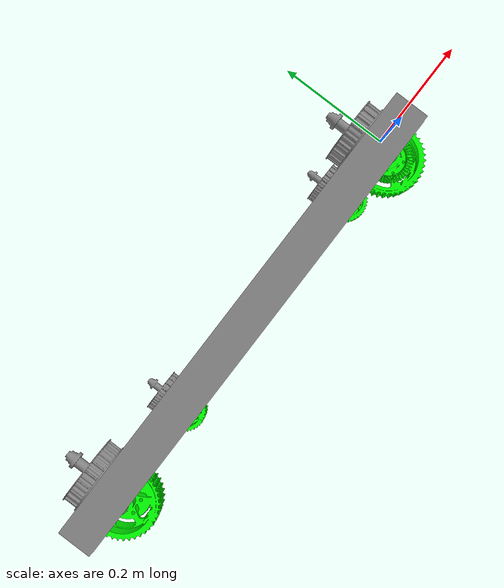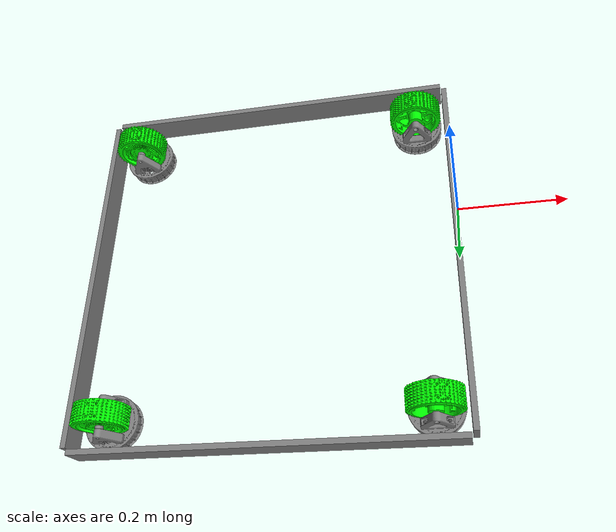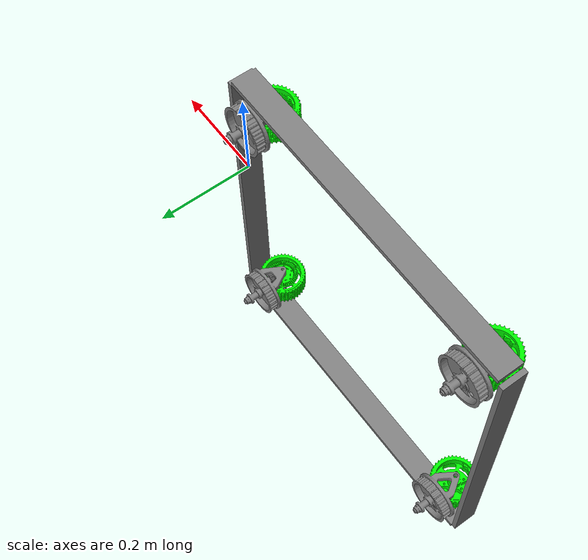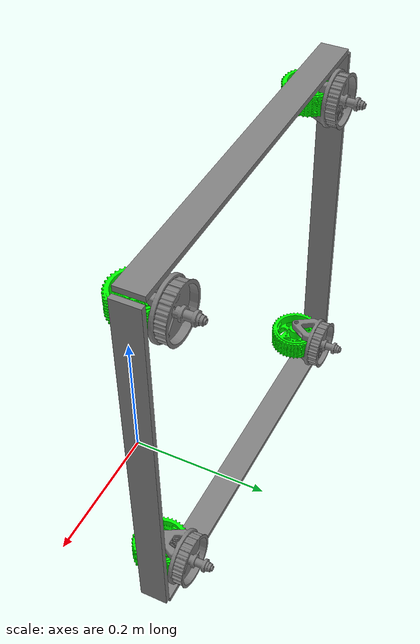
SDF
<?xml version="1.0" encoding="utf-8"?>
<sdf version="1.5">
  <model name="SimSwerveBotSqr">
    <pose>0 0 -0.0732265880524317 0 0 0</pose>

    <link name="Body">
      <gravity>1</gravity>
      <self_collide>0</self_collide>
      <pose>-0.361578521209738 0.0224477103221839 -0.000104141162104054 0 0 0</pose>
      <must_be_base_link>1</must_be_base_link>
      <velocity_decay>
        <linear>0</linear>
        <angular>0</angular>
      </velocity_decay>
      <inertial>
        <mass>250</mass>
        <pose>0 0 0 0 0 0</pose>
        <inertia>
          <ixx>20</ixx>
          <ixy>0</ixy>
          <ixz>0</ixz>
          <iyy>20</iyy>
          <iyz>0</iyz>
          <izz>20</izz>
        </inertia>
      </inertial>
      <collision name="Body_collision">
         <pose>0.858117059242039 -0.0379327891243082 0.366644041537595 0 0 0</pose>
        <geometry>
          <mesh>
            <scale>1 1 1</scale>
            <uri>model://SimSwerveBotSqr/meshes/Body_col.STL</uri>
          </mesh>
        </geometry>
        <surface>
          <contact>
            <ode />
          </contact>
          <friction>
            <ode>
              <mu>0</mu>
              <mu2>0</mu2>
            </ode>
          </friction>
        </surface>
      </collision>
      <visual name="Body_visual">
        <pose>0.751642401990572 -0.0956742983746156 0.183415226520529 0 0 0</pose>
        <material>
          <ambient>0.501960784313725 0.501960784313725 0.501960784313725 1</ambient>
          <diffuse>0.501960784313725 0.501960784313725 0.501960784313725 1</diffuse>
        </material>
        <geometry>
          <mesh>
            <scale>1 1 1</scale>
            <uri>model://SimSwerveBotSqr/meshes/Body.STL</uri>
          </mesh>
        </geometry>
      </visual>
    </link>
    <link name="FRdrive">
      <gravity>1</gravity>
      <self_collide>0</self_collide>
      <pose>-0.0666704068227935 0.0213331240064611 0.295439736536125 0 0 0</pose>
      <must_be_base_link>0</must_be_base_link>
      <velocity_decay>
        <linear>0</linear>
        <angular>0.01</angular>
      </velocity_decay>

      <inertial>

        <mass>1</mass>
        <pose>0 0 0 0 0 0</pose>
      </inertial>

      <visual name="FRdrive_visual">
        <pose>0.456734287603628 -0.0945597120588928 -0.1121286511777 0 0 0</pose>
        <material>
          <ambient>0.501960784313725 0.501960784313725 0.501960784313725 1</ambient>
          <diffuse>0.501960784313725 0.501960784313725 0.501960784313725 1</diffuse>
        </material>
        <geometry>
          <mesh>
            <scale>1 1 1</scale>
            <uri>model://SimSwerveBotSqr/meshes/FRdrive.STL</uri>
          </mesh>
        </geometry>
      </visual>
    </link>
    <joint name="Body-FRdrive" type="revolute">
      <parent>Body</parent>
      <child>FRdrive</child>
      <pose>-4.5931772064689E-06 4.16333634234434E-17 -0.000609236536125615 0 0 4.71238898038469</pose>
      <axis>
        <xyz>1 0 0</xyz>
       </axis>
    </joint>
    <link name="FRwheel">
      <gravity>1</gravity>
      <self_collide>0</self_collide>
      <pose>-0.0666751053477767 -0.0200407782960009 0.296484631380306 0 0 0</pose>
      <must_be_base_link>0</must_be_base_link>
      <velocity_decay>
        <linear>0</linear>
        <angular>0.001</angular>
      </velocity_decay>
      <inertial>
        <mass>0.123981366006224</mass>
        <pose>0 0 0 0 0 0</pose>
      </inertial>
      <collision name="FRwheel_collision">
        <pose>0.456738986128612 -0.0531858097564308 -0.113173546021881 0 0 0</pose>
        <geometry>
          <mesh>
            <scale>1 1 1</scale>
            <uri>model://SimSwerveBotSqr/meshes/FRwheel_col.STL</uri>
          </mesh>
        </geometry>
        <surface>
          <contact>
            <ode>
              <max_vel>0.1</max_vel>
              <soft_cfm>0.8</soft_cfm>
              <soft_erp>0.8</soft_erp>
              <kd>25</kd>
              <kp>1e6</kp>
              <min_depth>0.0001</min_depth>
            </ode>
            </contact>
        </surface>
      </collision>
      <visual name="FRwheel_visual">
        <pose>0.456738986128612 -0.0531858097564308 -0.113173546021881 0 0 0</pose>
        <material>
          <ambient>0 1 0 1</ambient>
          <diffuse>0 1 0 1</diffuse>
        </material>
        <geometry>
          <mesh>
            <scale>1 1 1</scale>
            <uri>model://SimSwerveBotSqr/meshes/FRwheel.STL</uri>
          </mesh>
        </geometry>
      </visual>
    </link>
    <joint name="FRdrive-FRwheel" type="revolute">
      <parent>FRdrive</parent>
      <child>FRwheel</child>
      <pose>1.25638072462353E-05 0.000114295457558429 -9.46325307421558E-08 0 0 0</pose>
      <axis>
        <xyz>0.00753194032505162 0 -1</xyz>
        <dynamics>
          <damping>1</damping>
          <friction>1</friction>
        </dynamics>
      </axis>
    </joint>
    <link name="FLdrive">
      <gravity>1</gravity>
      <self_collide>0</self_collide>
      <pose>-0.0666783151978865 0.0213331240141264 -0.29422125516612 0 0 0</pose>
      <must_be_base_link>0</must_be_base_link>
      <velocity_decay>
        <linear>0</linear>
        <angular>0.01</angular>
      </velocity_decay>

      <inertial>

        <mass>1</mass>
        <pose>0 0 0 0 0 0</pose>
      </inertial>

      <visual name="FLdrive_visual">
        <pose>0.456742195978721 -0.0945597120665581 0.477532340524545 0 0 0</pose>
        <material>
          <ambient>0.501960784313725 0.501960784313725 0.501960784313725 1</ambient>
          <diffuse>0.501960784313725 0.501960784313725 0.501960784313725 1</diffuse>
        </material>
        <geometry>
          <mesh>
            <scale>1 1 1</scale>
            <uri>model://SimSwerveBotSqr/meshes/FLdrive.STL</uri>
          </mesh>
        </geometry>
      </visual>
    </link>
    <joint name="Body-FLdrive" type="revolute">
      <parent>Body</parent>
      <child>FLdrive</child>
      <pose>3.31519788482337E-06 1.38777878078145E-17 -0.00060924483387842 0 0 4.71238898038469</pose>
      <axis>
        <xyz>1 0 0</xyz>
      </axis>
    </joint>
    <link name="FLwheel">
      <gravity>1</gravity>
      <self_collide>0</self_collide>
      <pose>-0.0666500588503373 -0.0200363391768113 -0.293176256117941 0 0 0</pose>
      <must_be_base_link>0</must_be_base_link>
      <velocity_decay>
        <linear>0</linear>
        <angular>0.001</angular>
      </velocity_decay>
      <inertial>
        <mass>0.123981363237599</mass>
        <pose>0 0 0 0 0 0</pose>
      </inertial>
      <collision name="FLwheel_collision">
        <pose>0.456713939631172 -0.0531902488756204 0.476487341476367 0 0 0</pose>
        <geometry>
          <mesh>
            <scale>1 1 1</scale>
            <uri>model://SimSwerveBotSqr/meshes/FLwheel_col.STL</uri>
          </mesh>
        </geometry>
        <surface>
          <contact>
            <ode>
              <max_vel>0.1</max_vel>
              <soft_cfm>0.8</soft_cfm>
              <soft_erp>0.8</soft_erp>
              <kd>25</kd>
              <kp>1e6</kp>
              <min_depth>0.0001</min_depth>
            </ode>
          </contact>
        </surface>
      </collision>
      <visual name="FLwheel_visual">
        <pose>0.456713939631172 -0.0531902488756204 0.476487341476367 0 0 0</pose>
        <material>
          <ambient>0 1 0 1</ambient>
          <diffuse>0 1 0 1</diffuse>
        </material>
        <geometry>
          <mesh>
            <scale>1 1 1</scale>
            <uri>model://SimSwerveBotSqr/meshes/FLwheel.STL</uri>
          </mesh>
        </geometry>
      </visual>
    </link>
    <joint name="FLdrive-FLwheel" type="revolute">
      <parent>FLdrive</parent>
      <child>FLwheel</child>
      <pose>-3.3953405144671E-05 0.000109856338368894 -1.84997501984085E-07 0 0 0</pose>
      <axis>
        <xyz>-0.00544848904353577 5.40638311670226E-16 -0.999985156873412</xyz>
        <dynamics>
          <damping>1</damping>
          <friction>1</friction>
        </dynamics>
      </axis>
    </joint>
    <link name="BRdrive">
      <gravity>1</gravity>
      <self_collide>0</self_collide>
      <pose>-0.656522966927376 0.021333123817192 0.294221257752678 0 0 0</pose>
      <must_be_base_link>0</must_be_base_link>
      <velocity_decay>
        <linear>0</linear>
        <angular>0.01</angular>
      </velocity_decay>

      <inertial>

        <mass>1</mass>
        <pose>0 0 0 0 0 0</pose>
      </inertial>

      <visual name="BRdrive_visual">
        <pose>1.04658684770821 -0.0945597118696237 -0.110910172394253 0 0 0</pose>
        <material>
          <ambient>0.501960784313725 0.501960784313725 0.501960784313725 1</ambient>
          <diffuse>0.501960784313725 0.501960784313725 0.501960784313725 1</diffuse>
        </material>
        <geometry>
          <mesh>
            <scale>1 1 1</scale>
            <uri>model://SimSwerveBotSqr/meshes/BRdrive.STL</uri>
          </mesh>
        </geometry>
      </visual>
    </link>
    <joint name="Body-BRdrive" type="revolute">
      <parent>Body</parent>
      <child>BRdrive</child>
      <pose>3.71059319737022E-06 0 0.000609242247312 0 0 4.71238898038469</pose>
      <axis>
        <xyz>1 0 0</xyz>
      </axis>
    </joint>
    <link name="BRwheel">
      <gravity>1</gravity>
      <self_collide>0</self_collide>
      <pose>-0.656516755128661 -0.0200407782968191 0.293176370684932 0 0 0</pose>
      <must_be_base_link>0</must_be_base_link>
      <velocity_decay>
        <linear>0</linear>
        <angular>0.001</angular>
      </velocity_decay>
      <inertial>
        <mass>0.123981364545114</mass>
        <pose>0 0 0 0 0 0</pose>
      </inertial>
      <collision name="BRwheel_collision">
        <pose>1.0465806359095 -0.0531858097556126 -0.109865285326507 0 0 0</pose>
        <geometry>
          <mesh>
            <scale>1 1 1</scale>
            <uri>model://SimSwerveBotSqr/meshes/BRwheel_col.STL</uri>
          </mesh>
        </geometry>
        <surface>
          <contact>
            <ode>
              <max_vel>0.1</max_vel>
              <soft_cfm>0.8</soft_cfm>
              <soft_erp>0.8</soft_erp>
              <kd>25</kd>
              <kp>1e6</kp>
              <min_depth>0.0001</min_depth>
            </ode>
          </contact>
        </surface>
      </collision>
      <visual name="BRwheel_visual">
        <pose>1.0465806359095 -0.0531858097556126 -0.109865285326507 0 0 0</pose>
        <material>
          <ambient>0 1 0 1</ambient>
          <diffuse>0 1 0 1</diffuse>
        </material>
        <geometry>
          <mesh>
            <scale>1 1 1</scale>
            <uri>model://SimSwerveBotSqr/meshes/BRwheel.STL</uri>
          </mesh>
        </geometry>
      </visual>
    </link>
    <joint name="BRdrive-BRwheel" type="revolute">
      <parent>BRdrive</parent>
      <child>BRwheel</child>
      <pose>-1.25639304104919E-05 0.000114295458376761 7.64349052384539E-08 0 0 0</pose>
      <axis>
        <xyz>-0.0060835652850478 5.43691585820102E-16 -0.999981494945493</xyz>
        <dynamics>
          <damping>1</damping>
          <friction>1</friction>
        </dynamics>
      </axis>
    </joint>
    <link name="BLdrive">
      <gravity>1</gravity>
      <self_collide>0</self_collide>
      <pose>-0.656523849354794 0.0213331238156132 -0.295820736234577 0 0 0</pose>
      <must_be_base_link>0</must_be_base_link>
      <velocity_decay>
        <linear>0</linear>
        <angular>0.01</angular>
      </velocity_decay>

      <inertial>

        <mass>1</mass>
        <pose>0 0 0 0 0 0</pose>
      </inertial>

      <visual name="BLdrive_visual">
        <pose>1.04658773013563 -0.0945597118680448 0.479131821593002 0 0 0</pose>
        <material>
          <ambient>0.501960784313725 0.501960784313725 0.501960784313725 1</ambient>
          <diffuse>0.501960784313725 0.501960784313725 0.501960784313725 1</diffuse>
        </material>
        <geometry>
          <mesh>
            <scale>1 1 1</scale>
            <uri>model://SimSwerveBotSqr/meshes/BLdrive.STL</uri>
          </mesh>
        </geometry>
      </visual>
    </link>
    <joint name="Body-BLdrive" type="revolute">
      <parent>Body</parent>
      <child>BLdrive</child>
      <pose>4.59302061250888E-06 0 0.000609236234577704 0 0 4.71238898038469</pose>
      <axis>
        <xyz>1 0 0</xyz>
      </axis>
    </joint>
    <link name="BLwheel">
      <gravity>1</gravity>
      <self_collide>0</self_collide>
      <pose>-0.656519150986405 -0.0200407782960008 -0.296865631380304 0 0 0</pose>
      <must_be_base_link>0</must_be_base_link>
      <velocity_decay>
        <linear>0</linear>
        <angular>0.001</angular>
      </velocity_decay>
      <inertial>
        <mass>0.123981366006225</mass>
        <pose>0 0 0 0 0 0</pose>
      </inertial>
      <collision name="BLwheel_collision">
        <pose>1.04658303176724 -0.0531858097564309 0.48017671673873 0 0 0</pose>
        <geometry>
          <mesh>
            <scale>1 1 1</scale>
            <uri>model://SimSwerveBotSqr/meshes/BLwheel_col.STL</uri>
          </mesh>
        </geometry>
        <surface>
          <contact>
            <ode>
              <max_vel>0.1</max_vel>
              <soft_cfm>0.8</soft_cfm>
              <soft_erp>0.8</soft_erp>
              <kd>25</kd>
              <kp>1e6</kp>
              <min_depth>0.0001</min_depth>
            </ode>
          </contact>
        </surface>
      </collision>
      <visual name="BLwheel_visual">
        <pose>1.04658303176724 -0.0531858097564309 0.48017671673873 0 0 0</pose>
        <material>
          <ambient>0 1 0 1</ambient>
          <diffuse>0 1 0 1</diffuse>
        </material>
        <geometry>
          <mesh>
            <scale>1 1 1</scale>
            <uri>model://SimSwerveBotSqr/meshes/BLwheel.STL</uri>
          </mesh>
        </geometry>
      </visual>
    </link>
    <joint name="BLdrive-BLwheel" type="revolute">
      <parent>BLdrive</parent>
      <child>BLwheel</child>
      <pose>-1.25638072461243E-05 0.000114295457558505 9.46325307005225E-08 0 0 0</pose>
      <axis>
        <xyz>-0.0075319403250586 -5.39495021367634E-16 -1</xyz>
        <dynamics>
          <damping>1</damping>
          <friction>1</friction>
        </dynamics>
      </axis>
    </joint>

    <plugin name="clock" filename="sim_clock.dll">
      <topic>~/gazebo/frc/simulator/clock</topic>
    </plugin>

    <plugin name="Body_gyro" filename="sim_gyro.dll">
      <link>Body</link>
      <topic>~/gazebo/frc/simulator/gyro/0</topic>
      <units>degrees</units>
      <axis>yaw</axis>
    </plugin>

  <plugin name="Frame-FL-drive_motor" filename="sim_motor.dll">
      <joint>FLdrive-FLwheel</joint>
      <topic>~/gazebo/frc/simulator/motor/1</topic>
      <multiplier>25</multiplier>
    </plugin>
    <plugin name="Frame-FL-drive_encoder" filename="sim_encoder.dll">
        <joint>FLdrive-FLwheel</joint>
        <topic>~/gazebo/frc/simulator/encoder/1</topic>
        <multiplier>1</multiplier>
    </plugin>
    <plugin name="Frame-FL-turn_motor" filename="sim_motor.dll">
        <joint>Body-FLdrive</joint>
        <topic>~/gazebo/frc/simulator/motor/2</topic>
        <multiplier>50</multiplier>
    </plugin>
      <plugin name="Frame-FL-turn_encoder" filename="sim_encoder.dll">
      <joint>Body-FLdrive</joint>
       <topic>~/gazebo/frc/simulator/encoder/2</topic>
      <multiplier>1</multiplier>
    </plugin>

    <plugin name="Frame-FR-drive_motor" filename="sim_motor.dll">
        <joint>FRdrive-FRwheel</joint>
        <topic>~/gazebo/frc/simulator/motor/3</topic>
        <multiplier>25</multiplier>
    </plugin>
    <plugin name="Frame-FR-drive_encoder" filename="sim_encoder.dll">
        <joint>FRdrive-FRwheel</joint>
        <topic>~/gazebo/frc/simulator/encoder/3</topic>
        <multiplier>1</multiplier>
    </plugin>
    <plugin name="Frame-FR-turn_motor" filename="sim_motor.dll">
        <joint>Body-FRdrive</joint>
        <topic>~/gazebo/frc/simulator/motor/4</topic>
        <multiplier>50</multiplier>
    </plugin>
    <plugin name="Frame-FR-turn_encoder" filename="sim_encoder.dll">
      <joint>Body-FRdrive</joint>
       <topic>~/gazebo/frc/simulator/encoder/4</topic>
      <multiplier>1</multiplier>
    </plugin>

    <plugin name="Frame-BL-drive_motor" filename="sim_motor.dll">
        <joint>BLdrive-BLwheel</joint>
        <topic>~/gazebo/frc/simulator/motor/5</topic>
        <multiplier>25</multiplier>
    </plugin>
    <plugin name="Frame-BL-drive_encoder" filename="sim_encoder.dll">
        <joint>BLdrive-BLwheel</joint>
        <topic>~/gazebo/frc/simulator/encoder/5</topic>
        <multiplier>1</multiplier>
    </plugin>
    <plugin name="Frame-BL-turn_motor" filename="sim_motor.dll">
        <joint>Body-BLdrive</joint>
        <topic>~/gazebo/frc/simulator/motor/6</topic>
        <multiplier>50</multiplier>
    </plugin>
    <plugin name="Frame-BL-turn_encoder" filename="sim_encoder.dll">
        <joint>Body-BLdrive</joint>
        <topic>~/gazebo/frc/simulator/encoder/6</topic>
        <multiplier>1</multiplier>
    </plugin>

    <plugin name="Frame-BR-drive_motor" filename="sim_motor.dll">
        <joint>BRdrive-BRwheel</joint>
        <topic>~/gazebo/frc/simulator/motor/7</topic>
        <multiplier>25</multiplier>
    </plugin>
      <plugin name="Frame-BR-drive_encoder" filename="sim_encoder.dll">
        <joint>BRdrive-BRwheel</joint>
        <topic>~/gazebo/frc/simulator/encoder/7</topic>
        <multiplier>1</multiplier>
    </plugin>
    <plugin name="Frame-BR-turn_motor" filename="sim_motor.dll">
        <joint>Body-BRdrive</joint>
        <topic>~/gazebo/frc/simulator/motor/8</topic>
        <multiplier>50</multiplier>
    </plugin>
    <plugin name="Frame-BR-turn_encoder" filename="sim_encoder.dll">
        <joint>Body-BRdrive</joint>
        <topic>~/gazebo/frc/simulator/encoder/8</topic>
        <multiplier>1</multiplier>
    </plugin>

    </model>
</sdf>
